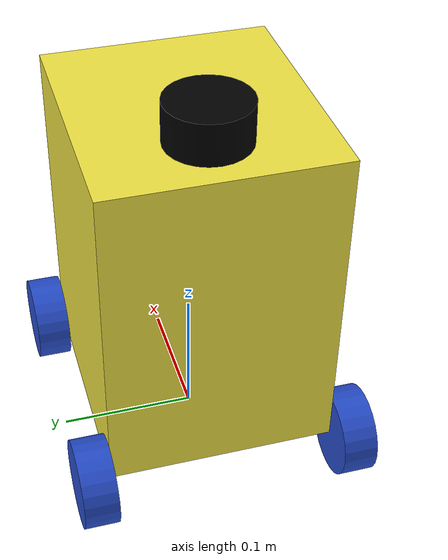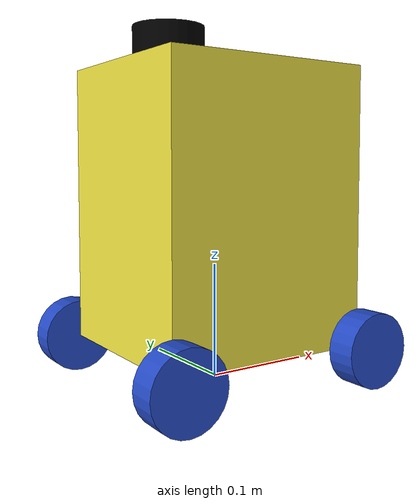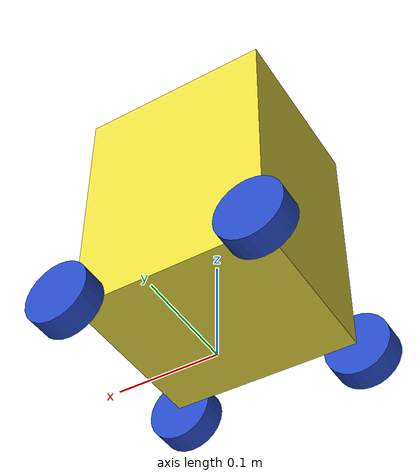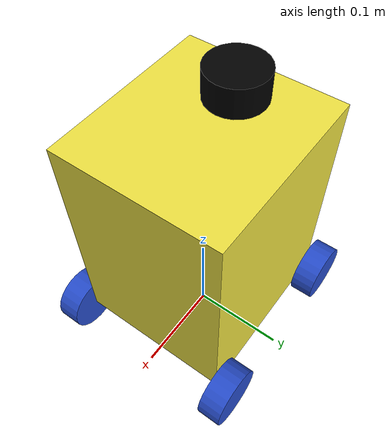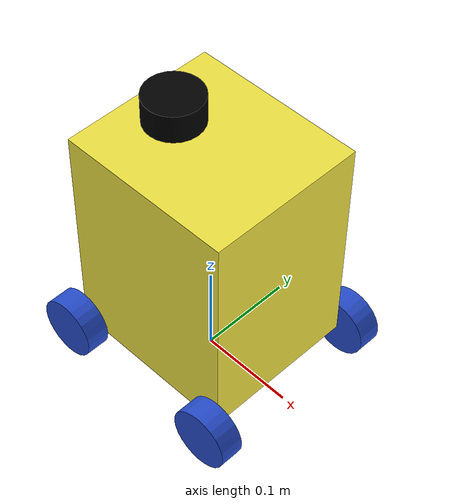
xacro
<?xml version="1.0"?>
<robot xmlns:xacro="hhttp://www.ros.org/wiki/xacro" name="elderbot">
  <xacro:include filename="robotcore.xacro" />

  <gazebo>
    <plugin name="diff_drive" filename="libgazebo_ros_diff_drive.so">
      <update_rate>10</update_rate>

      <left_joint>left_rear_wheel_joint</left_joint>
      <right_joint>right_rear_wheel_joint</right_joint>

      <wheel_separation>${wheel_separation}</wheel_separation>
      <wheel_diameter>${wheel_radius * 2}</wheel_diameter>

      <max_wheel_torque>20</max_wheel_torque>
      <max_wheel_acceleration>1.0</max_wheel_acceleration>

      <odometry_frame>odom</odometry_frame>
      <robot_base_frame>base_footprint</robot_base_frame>

      <publish_odom>true</publish_odom>
      <publish_odom_tf>true</publish_odom_tf>
      <publish_wheel_tf>false</publish_wheel_tf>
      <ros>
          <namespace>/</namespace>
          <remapping>cmd_vel:=cmd_vel</remapping>
          <remapping>odom:=odom</remapping>
      </ros>

    </plugin>

    <plugin name="joint_state_publisher" filename="libgazebo_ros_joint_state_publisher.so">
      <update_rate>10</update_rate>
      <joint_name>left_front_wheel_joint</joint_name>
      <joint_name>right_front_wheel_joint</joint_name>
      <joint_name>left_rear_wheel_joint</joint_name>
      <joint_name>right_rear_wheel_joint</joint_name>
    </plugin>
  </gazebo>

</robot>

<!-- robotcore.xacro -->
<robot xmlns:xacro="http://www.ros.org/wiki/xacro">
    <xacro:include filename="inertial_macros.xacro"/>
    <xacro:include filename="materials.xacro"/>
    <xacro:include filename="sensors.xacro"/>

    <xacro:property name="length" value="0.185"/>
    <xacro:property name="width"  value="0.166"/>   <!--width_box = width_total(22) - 2 × wheel_thickness-->
    <xacro:property name="height" value="0.24"/>    <!--height_box = height_total(27) - wheel_radius - LiDAR-->

    <xacro:property name="wheel_radius" value="0.032"/>
    <xacro:property name="wheel_thickness" value="0.025"/>
    <xacro:property name="wheel_separation" value="${width + wheel_thickness}"/>
    <xacro:property name="wheel_base" value="${length}"/>
    <xacro:property name="wheel_offset_y" value="${width/2 + wheel_thickness/2}"/>
    <xacro:property name="mass_chassis" value="2.15"/>
    <xacro:property name="mass_wheel" value="0.035"/>

    <!-- Base link -->
    <link name="base_link">
    </link>

    <link name="base_footprint"/>
    <joint name="base_footprint_joint" type="fixed">
        <parent link="base_footprint"/>
        <child link="base_link"/>
        <origin xyz="0 0 0.152" rpy="0 0 0"/>
    </joint>

    <!-- CHASSIS -->
    <joint name="chassis_joint" type="fixed">
        <parent link="base_link"/>
        <child link="chassis"/>
        <origin xyz="0 0 0"/>
    </joint>

    <link name="chassis">
        <visual>
            <origin xyz="0 0 0"/>
            <geometry>
                <box size="${length} ${width} ${height}"/>
            </geometry>
        </visual>
        <collision>
            <origin xyz="0 0 0"/>
            <geometry>
                <box size="${length} ${width} ${height}"/>
            </geometry>
        </collision>
        <xacro:inertial_box m="${mass_chassis}" lx="${length}" ly="${width}" lz="${height}"/>
    </link>

    <!-- WHEEL LINKS -->
    <!-- FRONT WHEELS -->
    <link name="left_front_wheel">
        <visual>
            <geometry><cylinder radius="${wheel_radius}" length="${wheel_thickness}"/></geometry>
        </visual>
        <xacro:blue_material />
        <collision>
            <geometry><cylinder radius="${wheel_radius}" length="${wheel_thickness}"/></geometry>
        </collision>
        <xacro:inertial_cylinder_about_y m="${mass_wheel}" r="${wheel_radius}" l="${wheel_thickness}"/>
    </link>
    <xacro:blue_gazebo_material object="left_front_wheel" />

    <link name="right_front_wheel">
        <visual>
            <geometry><cylinder radius="${wheel_radius}" length="${wheel_thickness}"/></geometry>
        </visual>
        <xacro:blue_material />
        <collision>
            <geometry><cylinder radius="${wheel_radius}" length="${wheel_thickness}"/></geometry>
        </collision>
        <xacro:inertial_cylinder_about_y m="${mass_wheel}" r="${wheel_radius}" l="${wheel_thickness}"/>
    </link>
    <xacro:blue_gazebo_material object="right_front_wheel" />

    <!-- REAR WHEELS -->
    <link name="left_rear_wheel">
        <visual>
            <geometry><cylinder radius="${wheel_radius}" length="${wheel_thickness}"/></geometry>
        </visual>
        <xacro:blue_material />
        <collision>
            <geometry><cylinder radius="${wheel_radius}" length="${wheel_thickness}"/></geometry>
        </collision>
        <xacro:inertial_cylinder_about_y m="${mass_wheel}" r="${wheel_radius}" l="${wheel_thickness}"/>
    </link>
    <xacro:blue_gazebo_material object="left_rear_wheel" />

    <link name="right_rear_wheel">
        <visual>
            <geometry><cylinder radius="${wheel_radius}" length="${wheel_thickness}"/></geometry>
        </visual>
        <xacro:blue_material />
        <collision>
            <geometry><cylinder radius="${wheel_radius}" length="${wheel_thickness}"/></geometry>
        </collision>
        <xacro:inertial_cylinder_about_y m="${mass_wheel}" r="${wheel_radius}" l="${wheel_thickness}"/>
    </link>
    <xacro:blue_gazebo_material object="right_rear_wheel" />

    <!-- WHEEL JOINTS -->
    <joint name="left_front_wheel_joint" type="continuous">
        <parent link="base_link"/>
        <child link="left_front_wheel"/>
        <origin xyz="${wheel_base/2} ${wheel_offset_y} ${-height/2}" rpy="-${pi/2} 0 0"/>
        <axis xyz="0 0 1"/>
    </joint>

    <joint name="right_front_wheel_joint" type="continuous">
        <parent link="base_link"/>
        <child link="right_front_wheel"/>
        <origin xyz="${wheel_base/2} -${wheel_offset_y} ${-height/2}" rpy="${pi/2} 0 0"/>
        <axis xyz="0 0 -1"/>
    </joint>

    <joint name="left_rear_wheel_joint" type="continuous">
        <parent link="base_link"/>
        <child link="left_rear_wheel"/>
        <origin xyz="-${wheel_base/2} ${wheel_offset_y} ${-height/2}" rpy="-${pi/2} 0 0"/>
        <axis xyz="0 0 1"/>
    </joint>

    <joint name="right_rear_wheel_joint" type="continuous">
        <parent link="base_link"/>
        <child link="right_rear_wheel"/>
        <origin xyz="-${wheel_base/2} -${wheel_offset_y} ${-height/2}" rpy="${pi/2} 0 0"/>
        <axis xyz="0 0 -1"/>
    </joint>

</robot>

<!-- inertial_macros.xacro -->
<robot xmlns:xacro="http://www.ros.org/wiki/xacro">

  <xacro:macro name="inertial_box" params="m lx ly lz">
    <inertial>
      <mass value="${m}"/>
      <inertia
        ixx="${(1.0/12.0)*m*(ly*ly + lz*lz)}"
        iyy="${(1.0/12.0)*m*(lx*lx + lz*lz)}"
        izz="${(1.0/12.0)*m*(lx*lx + ly*ly)}"
        ixy="0" ixz="0" iyz="0"/>
    </inertial>
  </xacro:macro>

  <xacro:macro name="inertial_cylinder_about_y" params="m r l">
    <inertial>
      <mass value="${m}"/>
      <inertia
        ixx="${(1.0/12.0)*m*(3*r*r + l*l)}"
        iyy="${0.5*m*r*r}"
        izz="${(1.0/12.0)*m*(3*r*r + l*l)}"
        ixy="0" ixz="0" iyz="0"/>
    </inertial>
  </xacro:macro>

</robot>

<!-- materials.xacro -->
<robot xmlns:xacro="http://www.ros.org/wiki/xacro" >

<!-- |    This XACRO contains the colors of the parts of the robot                     | -->
    <xacro:macro name="blue_material">
        <material name="blue">
            <color rgba="0 0 1 1.0" />
        </material>
    </xacro:macro>

    <xacro:macro name="white_material">
        <material name="white">
            <color rgba="1 1 1 1.0" />
        </material>
    </xacro:macro>

    <xacro:macro name="black_material">
        <material name="black">
            <color rgba="0 0 0 1.0" />
        </material>
    </xacro:macro>

    <!-- Gazebo Materials -->
    <xacro:macro name="blue_gazebo_material" params="object">
        <gazebo reference="${object}">
            <material>Gazebo/Blue</material>
        </gazebo>
    </xacro:macro>

    <xacro:macro name="white_gazebo_material" params="object">
        <gazebo reference="${object}">
            <material>Gazebo/White</material>
        </gazebo>
    </xacro:macro>

    <xacro:macro name="black_gazebo_material" params="object">
        <gazebo reference="${object}">
            <material>Gazebo/Black</material>
        </gazebo>
    </xacro:macro>

</robot>

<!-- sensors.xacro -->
<robot xmlns:xacro="http://www.ros.org/wiki/xacro">

 <!-- Laser (LiDAR) -->
    <joint name="laser_joint" type="fixed">
        <parent link="chassis"/>
        <child link="laser_frame"/>
        <origin xyz="-0.04625 0 0.135" rpy="0 0 0"/>
    </joint>

    <link name="laser_frame">
        <visual>
            <geometry>
                <cylinder radius="0.03" length="0.03"/>
            </geometry>
            <xacro:black_material/>
        </visual>
        <collision>
            <geometry>
                <cylinder radius="0.03" length="0.03"/>
            </geometry>
        </collision>
        <xacro:inertial_cylinder_about_y m="0.1" r="0.05" l="0.04"/>
    </link>
    <xacro:black_gazebo_material object="laser_frame" />

    <gazebo reference="laser_frame">
        <sensor type="ray" name="lidar">
            <pose>0 0 0 0 0 0</pose>
            <visualize>true</visualize>
            <update_rate>10</update_rate>
            <ray>
                <scan>
                    <horizontal>
                        <samples>359</samples>
                        <min_angle>-3.14</min_angle>
                        <max_angle>3.122</max_angle>
                    </horizontal>
                </scan>
                <range>
                    <min>0.3</min>
                    <max>12</max>
                    <resolution>0.01</resolution>
                </range>
            </ray>
            <plugin name="gazebo_ros_ray_sensor" filename="libgazebo_ros_ray_sensor.so">
                <ros>
                    <argument>~/out:=scan</argument>
                    <parameter name="frame_name" value="laser_frame"/>
                </ros>
                <output_type>sensor_msgs/LaserScan</output_type>
                <frameName>laser_frame</frameName>
            </plugin>
        </sensor>
    </gazebo>
</robot>
